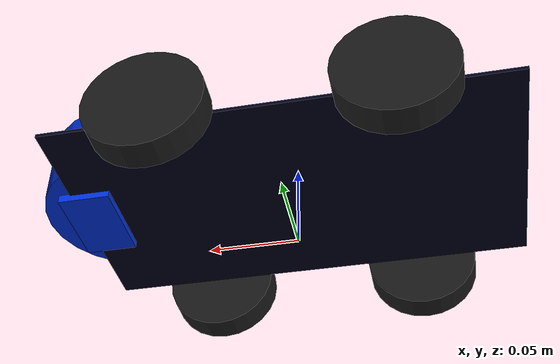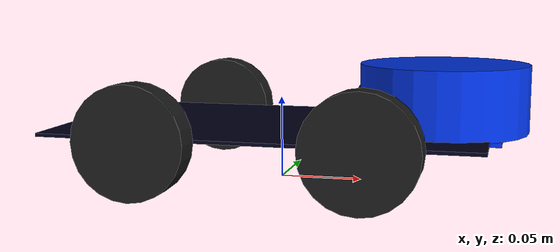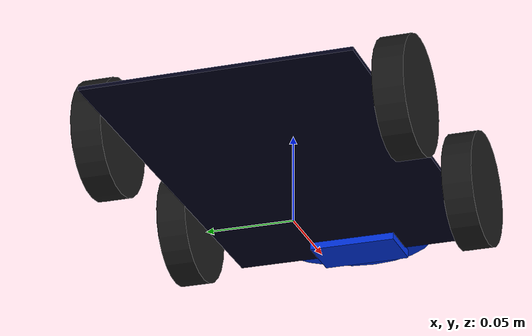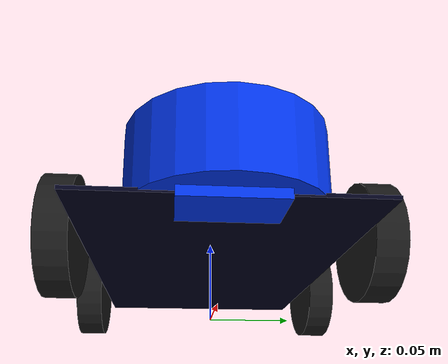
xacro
<?xml version="1.0"?>
<robot xmlns:xacro="http://www.ros.org/wiki/xacro">

  <!-- Include the physical description of the robot -->
  <xacro:include filename="real_BMW_core.xacro"/>

  <!-- ros2_control hardware interface for the real robot -->
  <ros2_control name="RobotHardware" type="system">
    <hardware>
      <plugin>slampibot_gazebo/DynamixelHardwareInterface</plugin> <!-- Updated plugin name -->

      <!-- Parameters for your hardware interface plugin -->
      <param name="device_name">/dev/ttyACM0</param>
      <param name="baud_rate">1000000</param>
      <param name="protocol_version">2.0</param>
      <param name="opencr_id">200</param> <!-- OpenCR board's Dynamixel ID (usually 200) -->

      <!-- Dynamixel ID mapping for each joint -->
      <param name="LF_wheel_joint_id">1</param> <!-- Replace 1 with actual Dynamixel ID -->
      <param name="RF_wheel_joint_id">2</param> <!-- Replace 2 with actual Dynamixel ID -->
      <param name="LB_wheel_joint_id">3</param> <!-- Replace 3 with actual Dynamixel ID -->
      <param name="RB_wheel_joint_id">4</param> <!-- Replace 4 with actual Dynamixel ID -->

    </hardware>

    <!-- Define the joints that ros2_control will manage -->
    <joint name="LF_wheel_joint">
      <command_interface name="velocity"/>
      <state_interface name="velocity"/>
      <state_interface name="position"/>
    </joint>

    <joint name="RF_wheel_joint">
      <command_interface name="velocity"/>
      <state_interface name="velocity"/>
      <state_interface name="position"/>
    </joint>

    <joint name="LB_wheel_joint">
      <command_interface name="velocity"/>
      <state_interface name="velocity"/>
      <state_interface name="position"/>
    </joint>

    <joint name="RB_wheel_joint">
      <command_interface name="velocity"/>
      <state_interface name="velocity"/>
      <state_interface name="position"/>
    </joint>

  </ros2_control>

</robot>

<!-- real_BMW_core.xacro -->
<robot name="BMW_Car" xmlns:xacro="http://www.ros.org/wiki/xacro">

    <!-- This file describes the real, physical properties of the robot. -->
    <!-- All dimensions are in meters. -->

    <xacro:include filename="inertial_macros.xacro"/>

    <xacro:property name="wheel_mass" value="0.05"/>
    <xacro:property name="chassis_mass" value="0.5"/> <!-- Adjusted mass for the chassis -->

    <!-- Materials for RViz visualization -->
    <material name="blue">
        <color rgba="0 0.2 0.9 1"/>
    </material>
    <material name="gray">
        <color rgba="0.1 0.1 0.1 1"/>
    </material>
    <material name="darkBlue">
        <color rgba="0 0 0.1 1"/>
    </material>

    <!-- Base link for the robot model -->
    <link name="dummy_link"/>

    <!-- Chassis -->
    <link name="chassis">
        <visual>
            <geometry>
                <!-- Real dimensions: 0.257m x 0.150m x 0.002m -->
                <box size="0.257 0.150 0.002"/>
            </geometry>
            <material name="darkBlue"/>
        </visual>
        <collision>
            <geometry>
                <box size="0.257 0.150 0.002"/>
            </geometry>
        </collision>
        <xacro:inertial_box mass="${chassis_mass}" x="0.257" y="0.150" z="0.002">
            <origin rpy="0 0 0" xyz="0 0 0"/>
        </xacro:inertial_box>
    </link>

    <joint name="chassis_joint" type="fixed">
        <parent link="dummy_link"/>
        <child link="chassis"/>
        <origin xyz="0 0 0.033"/> <!-- Place chassis so wheels are on the ground (z=radius) -->
    </joint>

    <!-- Wheel Properties -->
    <xacro:property name="wheel_radius" value="0.033" /> <!-- 66mm diameter -->
    <xacro:property name="wheel_length" value="0.017" /> <!-- 17mm height -->
    <xacro:property name="wheel_pos_x" value="0.06425" /> <!-- chassis_x/2 - wheel_radius/2 (approx) -->
    <xacro:property name="wheel_pos_y" value="0.0835" />  <!-- chassis_y/2 + wheel_length/2 -->

    <!-- Front Left Wheel -->
    <link name="LF_wheel">
        <visual>
            <geometry>
                <cylinder radius="${wheel_radius}" length="${wheel_length}"/>
            </geometry>
            <origin rpy="1.5707 0 0" xyz="0 0 0"/>
            <material name="gray"/>
        </visual>
        <collision>
            <geometry>
                <cylinder radius="${wheel_radius}" length="${wheel_length}"/>
            </geometry>
            <origin rpy="1.5707 0 0" xyz="0 0 0"/>
        </collision>
        <xacro:inertial_cylinder mass="${wheel_mass}" length="${wheel_length}" radius="${wheel_radius}">
            <origin rpy="1.5707 0 0" xyz="0 0 0"/>
        </xacro:inertial_cylinder>
    </link>

    <joint name="LF_wheel_joint" type="continuous">
        <parent link="chassis"/>
        <child link="LF_wheel"/>
        <origin rpy="0 0 0" xyz="${wheel_pos_x} ${wheel_pos_y} 0"/>
        <axis xyz="0 1 0"/>
    </joint>

    <!-- Back Left wheel -->
    <link name="LB_wheel">
        <visual>
            <geometry>
                <cylinder radius="${wheel_radius}" length="${wheel_length}"/>
            </geometry>
            <origin rpy="1.5707 0 0" xyz="0 0 0"/>
            <material name="gray"/>
        </visual>
        <collision>
            <geometry>
                <cylinder radius="${wheel_radius}" length="${wheel_length}"/>
            </geometry>
            <origin rpy="1.5707 0 0" xyz="0 0 0"/>
        </collision>
        <xacro:inertial_cylinder mass="${wheel_mass}" length="${wheel_length}" radius="${wheel_radius}">
            <origin rpy="1.5707 0 0" xyz="0 0 0"/>
        </xacro:inertial_cylinder>
    </link>

    <joint name="LB_wheel_joint" type="continuous">
        <parent link="chassis"/>
        <child link="LB_wheel"/>
        <origin rpy="0 0 0" xyz="-${wheel_pos_x} ${wheel_pos_y} 0"/>
        <axis xyz="0 1 0"/>
    </joint>

    <!-- Front Right Wheel -->
    <link name="RF_wheel">
        <visual>
            <geometry>
                <cylinder radius="${wheel_radius}" length="${wheel_length}"/>
            </geometry>
            <origin rpy="1.5707 0 0" xyz="0 0 0"/>
            <material name="gray"/>
        </visual>
        <collision>
            <geometry>
                <cylinder radius="${wheel_radius}" length="${wheel_length}"/>
            </geometry>
            <origin rpy="1.5707 0 0" xyz="0 0 0"/>
        </collision>
        <xacro:inertial_cylinder mass="${wheel_mass}" length="${wheel_length}" radius="${wheel_radius}">
            <origin rpy="1.5707 0 0" xyz="0 0 0"/>
        </xacro:inertial_cylinder>
    </link>

    <joint name="RF_wheel_joint" type="continuous">
        <parent link="chassis"/>
        <child link="RF_wheel"/>
        <origin rpy="0 0 0" xyz="${wheel_pos_x} -${wheel_pos_y} 0"/>
        <axis xyz="0 1 0"/>
    </joint>

    <!-- Back Right Wheel -->
    <link name="RB_wheel">
        <visual>
            <geometry>
                <cylinder radius="${wheel_radius}" length="${wheel_length}"/>
            </geometry>
            <origin rpy="1.5707 0 0" xyz="0 0 0"/>
            <material name="gray"/>
        </visual>
        <collision>
            <geometry>
                <cylinder radius="${wheel_radius}" length="${wheel_length}"/>
            </geometry>
            <origin rpy="1.5707 0 0" xyz="0 0 0"/>
        </collision>
        <xacro:inertial_cylinder mass="${wheel_mass}" length="${wheel_length}" radius="${wheel_radius}">
            <origin rpy="1.5707 0 0" xyz="0 0 0"/>
        </xacro:inertial_cylinder>
    </link>

    <joint name="RB_wheel_joint" type="continuous">
        <parent link="chassis"/>
        <child link="RB_wheel"/>
        <origin rpy="0 0 0" xyz="-${wheel_pos_x} -${wheel_pos_y} 0"/>
        <axis xyz="0 1 0"/>
    </joint>

    <!-- Lidar Sensor -->
    <link name="lidar_link">
        <visual>
            <geometry>
                <cylinder radius="0.05" length="0.04"/>
            </geometry>
            <material name="blue"/>
        </visual>
        <collision>
            <geometry>
                <cylinder radius="0.05" length="0.04"/>
            </geometry>
        </collision>
        <xacro:inertial_cylinder mass="0.1" length="0.04" radius="0.05">
            <origin rpy="0 0 0" xyz="0 0 0"/>
        </xacro:inertial_cylinder>
    </link>

    <joint name="lidar_joint" type="fixed">
        <parent link="chassis"/>
        <child link="lidar_link"/>
        <origin rpy="0 0 0" xyz="0.10 0 0.02"/> <!-- Adjust position as needed -->
    </joint>

    <!-- Camera Sensor -->
    <link name="camera_link">
        <visual>
            <geometry>
                <box size="0.03 0.05 0.03"/>
            </geometry>
            <material name="blue"/>
        </visual>
        <collision>
            <geometry>
                <box size="0.03 0.05 0.03"/>
            </geometry>
        </collision>
        <xacro:inertial_box mass="0.01" x="0.03" y="0.05" z="0.03">
            <origin rpy="0 0 0" xyz="0 0 0"/>
        </xacro:inertial_box>
    </link>

    <joint name="camera_joint" type="fixed">
        <parent link="chassis"/>
        <child link="camera_link"/>
        <origin rpy="0 0 0" xyz="0.12 0 0.01"/> <!-- Adjust position as needed -->
    </joint>

</robot>
